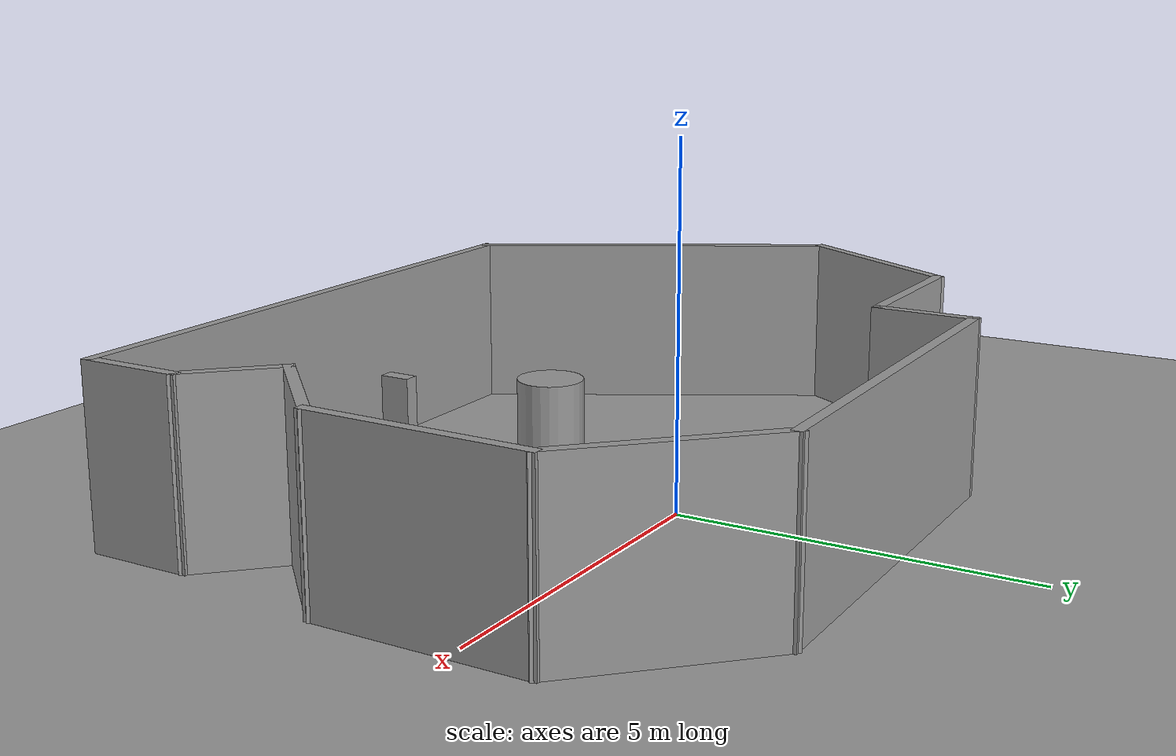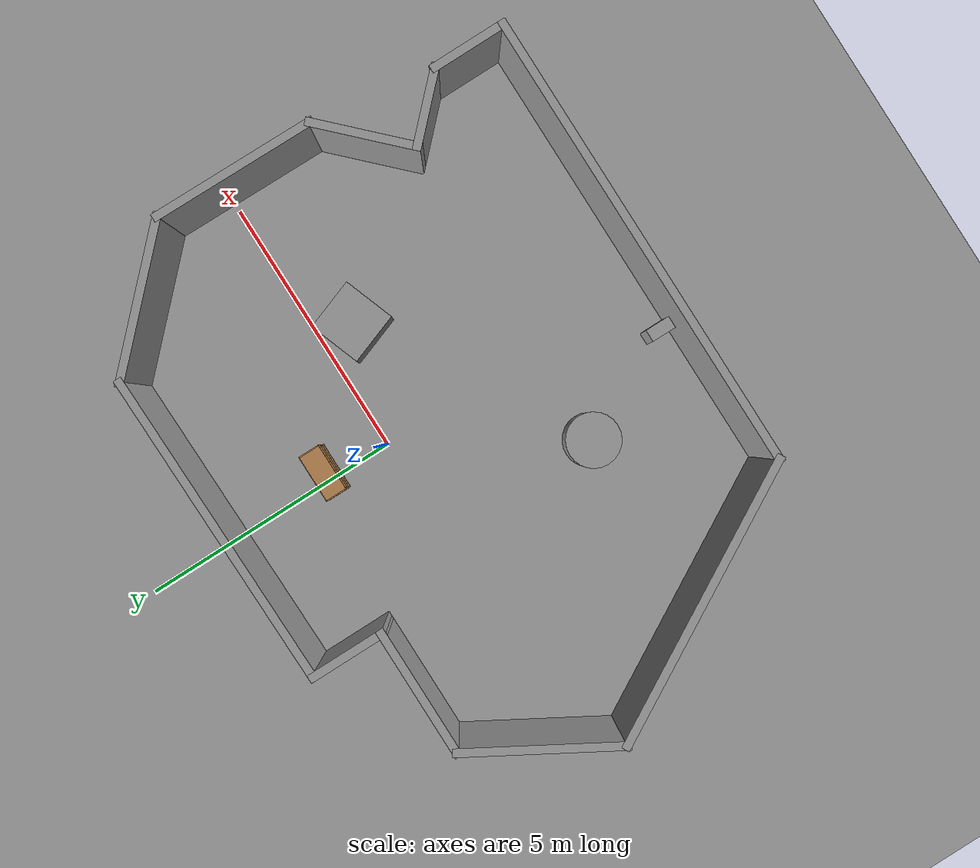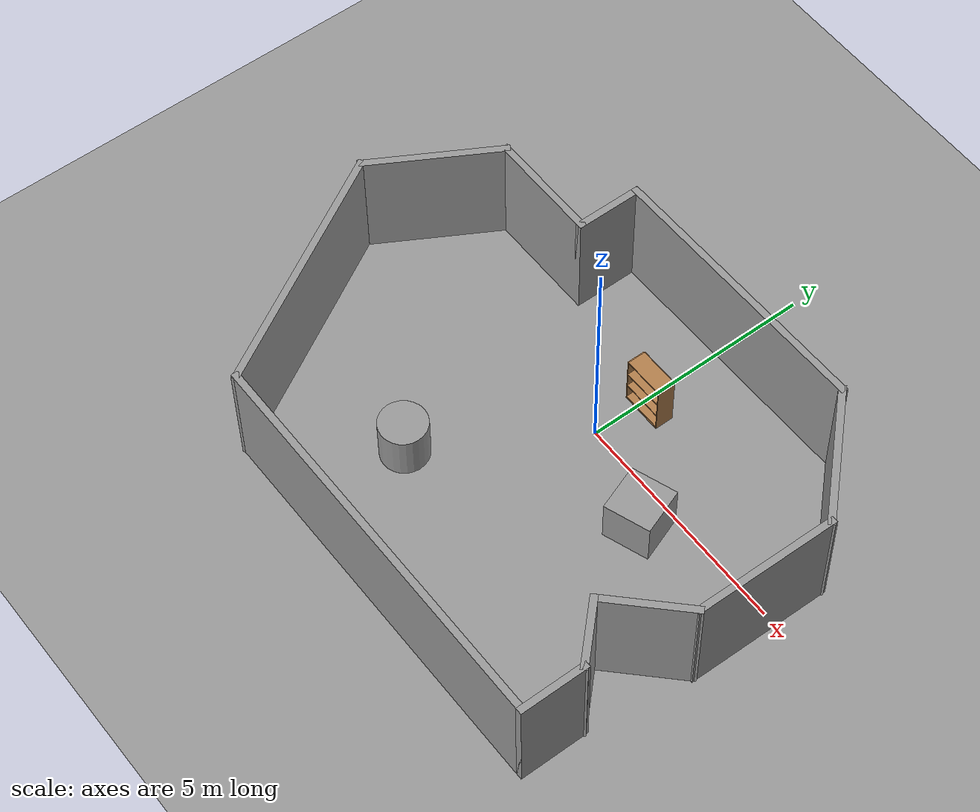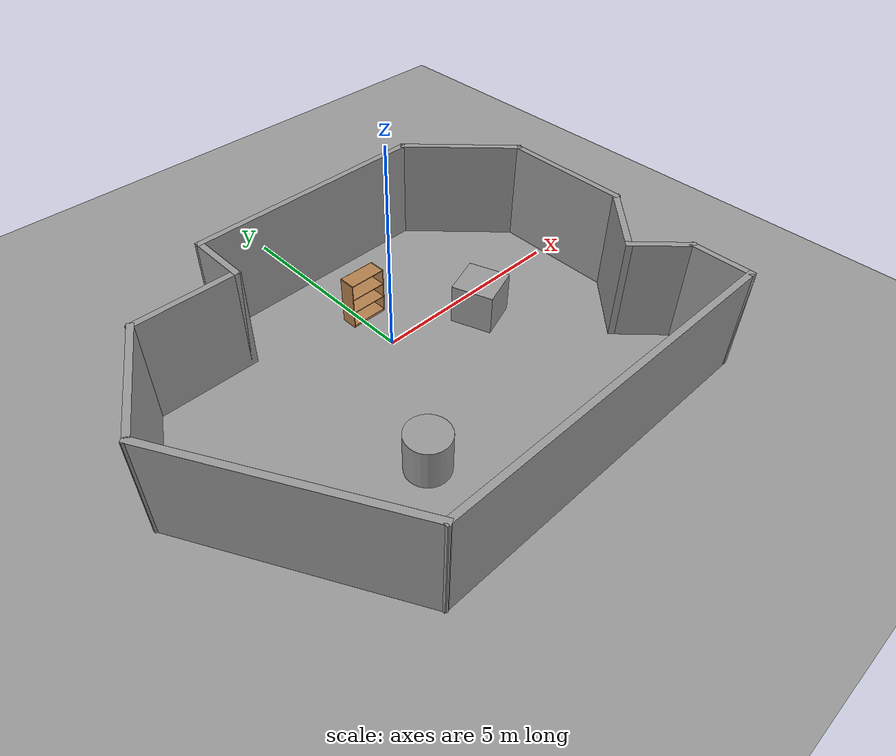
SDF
<sdf version="1.6">
 <world name="default">
  <light name="sun" type="directional">
   <pose>0 0 10 0 -0 0</pose>
   <diffuse>0.8 0.8 0.8 1</diffuse>
   <specular>0.2 0.2 0.2 1</specular>
   <attenuation>
    <range>1000</range>
    <constant>0.9</constant>
    <linear>0.01</linear>
    <quadratic>0.001</quadratic>
   </attenuation>
   <direction>0.5 0.1 -0.9</direction>
  </light>
  <scene><ambient>0.4 0.4 0.4 1</ambient><background>0.7 0.7 0.7 1</background><shadows>1</shadows></scene>
  <physics name="default_physics" default="0" type="ode">
   <max_step_size>0.01</max_step_size>
   <real_time_factor>1</real_time_factor>
   <real_time_update_rate>100</real_time_update_rate>
  </physics>
  <model name="bookshelf">
   <static>1</static>
   <link name="link">
    <inertial><mass>1</mass></inertial>
    <collision name="back">
     <pose>0 0.005 0.6 0 -0 0</pose>
     <geometry><box><size>0.9 0.01 1.2</size></box></geometry>
    </collision>
    <visual name="visual1">
     <pose>0 0.005 0.6 0 -0 0</pose>
     <geometry><box><size>0.9 0.01 1.2</size></box></geometry>
     <material>
      <script><uri>file://media/materials/scripts/gazebo.material</uri><name>Gazebo/Wood</name></script>
     </material>
    </visual>
    <collision name="left_side">
     <pose>0.45 -0.195 0.6 0 -0 0</pose>
     <geometry><box><size>0.02 0.4 1.2</size></box></geometry>
    </collision>
    <visual name="visual2">
     <pose>0.45 -0.195 0.6 0 -0 0</pose>
     <geometry><box><size>0.02 0.4 1.2</size></box></geometry>
     <material>
      <script><uri>file://media/materials/scripts/gazebo.material</uri><name>Gazebo/Wood</name></script>
     </material>
    </visual>
    <collision name="right_side">
     <pose>-0.45 -0.195 0.6 0 -0 0</pose>
     <geometry><box><size>0.02 0.4 1.2</size></box></geometry>
    </collision>
    <visual name="visual3">
     <pose>-0.45 -0.195 0.6 0 -0 0</pose>
     <geometry><box><size>0.02 0.4 1.2</size></box></geometry>
     <material>
      <script><uri>file://media/materials/scripts/gazebo.material</uri><name>Gazebo/Wood</name></script>
     </material>
    </visual>
    <collision name="bottom">
     <pose>0 -0.195 0.03 0 -0 0</pose>
     <geometry><box><size>0.88 0.4 0.06</size></box></geometry>
    </collision>
    <visual name="visual4">
     <pose>0 -0.195 0.03 0 -0 0</pose>
     <geometry><box><size>0.88 0.4 0.06</size></box></geometry>
     <material>
      <script><uri>file://media/materials/scripts/gazebo.material</uri><name>Gazebo/Wood</name></script>
     </material>
    </visual>
    <collision name="top">
     <pose>0 -0.195 1.19 0 -0 0</pose>
     <geometry><box><size>0.88 0.4 0.02</size></box></geometry>
    </collision>
    <visual name="visual5">
     <pose>0 -0.195 1.19 0 -0 0</pose>
     <geometry><box><size>0.88 0.4 0.02</size></box></geometry>
     <material>
      <script><uri>file://media/materials/scripts/gazebo.material</uri><name>Gazebo/Wood</name></script>
     </material>
    </visual>
    <collision name="low_shelf">
     <pose>0 -0.195 0.43 0 -0 0</pose>
     <geometry><box><size>0.88 0.4 0.02</size></box></geometry>
    </collision>
    <visual name="visual6">
     <pose>0 -0.195 0.43 0 -0 0</pose>
     <geometry><box><size>0.88 0.4 0.02</size></box></geometry>
     <material>
      <script><uri>file://media/materials/scripts/gazebo.material</uri><name>Gazebo/Wood</name></script>
     </material>
    </visual>
    <collision name="high_shelf">
     <pose>0 -0.195 0.8 0 -0 0</pose>
     <geometry><box><size>0.88 0.4 0.02</size></box></geometry>
    </collision>
    <visual name="visual7">
     <pose>0 -0.195 0.8 0 -0 0</pose>
     <geometry><box><size>0.88 0.4 0.02</size></box></geometry>
     <material>
      <script><uri>file://media/materials/scripts/gazebo.material</uri><name>Gazebo/Wood</name></script>
     </material>
    </visual>
    <velocity_decay><linear>0</linear><angular>0</angular></velocity_decay>
   </link>
   <pose>0.172597 1.38115 0 0 -0 0</pose>
  </model>
  <model name="ground_plane_0">
   <static>1</static>
   <link name="link">
    <collision name="collision">
     <geometry><plane><normal>0 0 1</normal><size>100 100</size></plane></geometry>
     <surface><friction><ode><mu>100</mu><mu2>50</mu2></ode></friction></surface>
    </collision>
    <visual name="visual">
     <cast_shadows>0</cast_shadows>
     <geometry><plane><normal>0 0 1</normal><size>100 100</size></plane></geometry>
     <material>
      <script><uri>file://media/materials/scripts/gazebo.material</uri><name>Gazebo/Grey</name></script>
     </material>
    </visual>
    <velocity_decay><linear>0</linear><angular>0</angular></velocity_decay>
   </link>
   <pose>0.497681 0 0 0 -0 0</pose>
  </model>
  <model name="unit_cylinder_1">
   <pose>-1.88704 -3.13568 0.49912 0 -0 0</pose>
   <link name="link">
    <inertial>
     <mass>1</mass>
     <inertia><ixx>1</ixx><ixy>0</ixy><ixz>0</ixz><iyy>1</iyy><iyz>0</iyz><izz>1</izz></inertia>
    </inertial>
    <collision name="collision">
     <geometry><cylinder><radius>0.5</radius><length>1</length></cylinder></geometry>
    </collision>
    <visual name="visual">
     <geometry><cylinder><radius>0.5</radius><length>1</length></cylinder></geometry>
     <material>
      <script><uri>file://media/materials/scripts/gazebo.material</uri><name>Gazebo/Grey</name></script>
     </material>
    </visual>
    <velocity_decay><linear>0</linear><angular>0</angular></velocity_decay>
   </link>
   <static>0</static>
  </model>
  <gravity>0 0 -9.8</gravity>
  <magnetic_field>6e-06 2.3e-05 -4.2e-05</magnetic_field>
  <atmosphere type="adiabatic"/>
  <spherical_coordinates>
   <surface_model>EARTH_WGS84</surface_model>
   <latitude_deg>0</latitude_deg>
   <longitude_deg>0</longitude_deg>
   <elevation>0</elevation>
   <heading_deg>0</heading_deg>
  </spherical_coordinates>
  <model name="unit_box_0">
   <pose>2.15389 -0.659337 0.49967 -0.00066 1e-06 -1.22482</pose>
   <link name="link">
    <inertial>
     <mass>1</mass>
     <inertia>
      <ixx>0.166667</ixx>
      <ixy>0</ixy>
      <ixz>0</ixz>
      <iyy>0.166667</iyy>
      <iyz>0</iyz>
      <izz>0.166667</izz>
     </inertia>
    </inertial>
    <collision name="collision"><geometry><box><size>1 1 1</size></box></geometry></collision>
    <visual name="visual">
     <geometry><box><size>1 1 1</size></box></geometry>
     <material>
      <script><name>Gazebo/Grey</name><uri>file://media/materials/scripts/gazebo.material</uri></script>
     </material>
    </visual>
   </link>
  </model>
  <model name="world_wll2">
   <pose>-0.5818 -1.17741 0 0 -0 0</pose>
   <link name="Wall_11">
    <collision name="Wall_11_Collision">
     <geometry><box><size>5.56105 0.15 2.5</size></box></geometry>
     <pose>0 0 1.25 0 -0 0</pose>
    </collision>
    <visual name="Wall_11_Visual">
     <pose>0 0 1.25 0 -0 0</pose>
     <geometry><box><size>5.56105 0.15 2.5</size></box></geometry>
     <material>
      <script><uri>file://media/materials/scripts/gazebo.material</uri><name>Gazebo/Grey</name></script>
      <ambient>1 1 1 1</ambient>
     </material>
    </visual>
    <pose>-4.49693 -1.95858 0 0 0 -1.0537</pose>
   </link>
   <link name="Wall_12">
    <collision name="Wall_12_Collision">
     <geometry><box><size>8.75 0.15 2.5</size></box></geometry>
     <pose>0 0 1.25 0 -0 0</pose>
    </collision>
    <visual name="Wall_12_Visual">
     <pose>0 0 1.25 0 -0 0</pose>
     <geometry><box><size>8.75 0.15 2.5</size></box></geometry>
     <material>
      <script><uri>file://media/materials/scripts/gazebo.material</uri><name>Gazebo/Grey</name></script>
      <ambient>1 1 1 1</ambient>
     </material>
    </visual>
    <pose>1.14057 -4.31037 0 0 -0 0</pose>
   </link>
   <link name="Wall_13">
    <collision name="Wall_13_Collision">
     <geometry><box><size>1.5 0.15 2.5</size></box></geometry>
     <pose>0 0 1.25 0 -0 0</pose>
    </collision>
    <visual name="Wall_13_Visual">
     <pose>0 0 1.25 0 -0 0</pose>
     <geometry><box><size>1.5 0.15 2.5</size></box></geometry>
     <material>
      <script><uri>file://media/materials/scripts/gazebo.material</uri><name>Gazebo/Grey</name></script>
      <ambient>1 1 1 1</ambient>
     </material>
    </visual>
    <pose>5.44057 -3.63537 0 0 -0 1.5708</pose>
   </link>
   <link name="Wall_14">
    <collision name="Wall_14_Collision">
     <geometry><box><size>1.5 0.15 2.5</size></box></geometry>
     <pose>0 0 1.25 0 -0 0</pose>
    </collision>
    <visual name="Wall_14_Visual">
     <pose>0 0 1.25 0 -0 0</pose>
     <geometry><box><size>1.5 0.15 2.5</size></box></geometry>
     <material>
      <script><uri>file://media/materials/scripts/gazebo.material</uri><name>Gazebo/Grey</name></script>
      <ambient>1 1 1 1</ambient>
     </material>
    </visual>
    <pose>4.96327 -2.48308 0 0 -0 2.35619</pose>
   </link>
   <link name="Wall_15">
    <collision name="Wall_15_Collision">
     <geometry><box><size>2 0.15 2.5</size></box></geometry>
     <pose>0 0 1.25 0 -0 0</pose>
    </collision>
    <visual name="Wall_15_Visual">
     <pose>0 0 1.25 0 -0 0</pose>
     <geometry><box><size>2 0.15 2.5</size></box></geometry>
     <material>
      <script><uri>file://media/materials/scripts/gazebo.material</uri><name>Gazebo/Grey</name></script>
      <ambient>1 1 1 1</ambient>
     </material>
    </visual>
    <pose>5.14004 -1.35171 0 0 -0 0.785398</pose>
   </link>
   <link name="Wall_16">
    <collision name="Wall_16_Collision">
     <geometry><box><size>3.13918 0.15 2.5</size></box></geometry>
     <pose>0 0 1.25 0 -0 0</pose>
    </collision>
    <visual name="Wall_16_Visual">
     <pose>0 0 1.25 0 -0 0</pose>
     <geometry><box><size>3.13918 0.15 2.5</size></box></geometry>
     <material>
      <script><uri>file://media/materials/scripts/gazebo.material</uri><name>Gazebo/Grey</name></script>
      <ambient>1 1 1 1</ambient>
     </material>
    </visual>
    <pose>5.81247 0.796846 0 0 -0 1.55852</pose>
   </link>
   <link name="Wall_18">
    <collision name="Wall_18_Collision">
     <geometry><box><size>3 0.15 2.5</size></box></geometry>
     <pose>0 0 1.25 0 -0 0</pose>
    </collision>
    <visual name="Wall_18_Visual">
     <pose>0 0 1.25 0 -0 0</pose>
     <geometry><box><size>3 0.15 2.5</size></box></geometry>
     <material>
      <script><uri>file://media/materials/scripts/gazebo.material</uri><name>Gazebo/Grey</name></script>
      <ambient>1 1 1 1</ambient>
     </material>
    </visual>
    <pose>-5.12193 1.62731 0 0 -0 1.0472</pose>
   </link>
   <link name="Wall_19">
    <collision name="Wall_19_Collision">
     <geometry><box><size>2.5 0.15 2.5</size></box></geometry>
     <pose>0 0 1.25 0 -0 0</pose>
    </collision>
    <visual name="Wall_19_Visual">
     <pose>0 0 1.25 0 -0 0</pose>
     <geometry><box><size>2.5 0.15 2.5</size></box></geometry>
     <material>
      <script><uri>file://media/materials/scripts/gazebo.material</uri><name>Gazebo/Grey</name></script>
      <ambient>1 1 1 1</ambient>
     </material>
    </visual>
    <pose>-3.23443 2.86139 0 0 -0 0</pose>
   </link>
   <link name="Wall_20">
    <collision name="Wall_20_Collision">
     <geometry><box><size>1.5 0.15 2.5</size></box></geometry>
     <pose>0 0 1.25 0 -0 0</pose>
    </collision>
    <visual name="Wall_20_Visual">
     <pose>0 0 1.25 0 -0 0</pose>
     <geometry><box><size>1.5 0.15 2.5</size></box></geometry>
     <material>
      <script><uri>file://media/materials/scripts/gazebo.material</uri><name>Gazebo/Grey</name></script>
      <ambient>1 1 1 1</ambient>
     </material>
    </visual>
    <pose>-2.05943 3.53639 0 0 -0 1.5708</pose>
   </link>
   <link name="Wall_21">
    <collision name="Wall_21_Collision">
     <geometry><box><size>6.02577 0.15 2.5</size></box></geometry>
     <pose>0 0 1.25 0 -0 0</pose>
    </collision>
    <visual name="Wall_21_Visual">
     <pose>0 0 1.25 0 -0 0</pose>
     <geometry><box><size>6.02577 0.15 2.5</size></box></geometry>
     <material>
      <script><uri>file://media/materials/scripts/gazebo.material</uri><name>Gazebo/Grey</name></script>
      <ambient>1 1 1 1</ambient>
     </material>
    </visual>
    <pose>0.878066 4.25899 0 0 -0 0.016201</pose>
   </link>
   <link name="Wall_7">
    <collision name="Wall_7_Collision">
     <geometry><box><size>3 0.15 2.5</size></box></geometry>
     <pose>0 0 1.25 0 -0 0</pose>
    </collision>
    <visual name="Wall_7_Visual">
     <pose>0 0 1.25 0 -0 0</pose>
     <geometry><box><size>3 0.15 2.5</size></box></geometry>
     <material>
      <script><uri>file://media/materials/scripts/gazebo.material</uri><name>Gazebo/Grey</name></script>
      <ambient>1 1 1 1</ambient>
     </material>
    </visual>
    <pose>4.82319 3.29895 0 0 0 -0.785398</pose>
   </link>
   <static>1</static>
  </model>
  <model name="unit_box_1">
   <pose>-0.870203 -5.17833 0.499999 -4e-06 1e-06 -4e-06</pose>
   <link name="link">
    <inertial>
     <mass>1</mass>
     <inertia>
      <ixx>0.166667</ixx>
      <ixy>0</ixy>
      <ixz>0</ixz>
      <iyy>0.166667</iyy>
      <iyz>0</iyz>
      <izz>0.166667</izz>
     </inertia>
    </inertial>
    <collision name="collision"><geometry><box><size>0.230907 0.468893 1</size></box></geometry></collision>
    <visual name="visual">
     <geometry><box><size>0.230907 0.468893 1</size></box></geometry>
     <material>
      <script><name>Gazebo/Grey</name><uri>file://media/materials/scripts/gazebo.material</uri></script>
     </material>
    </visual>
   </link>
  </model>
 </world>
</sdf>
